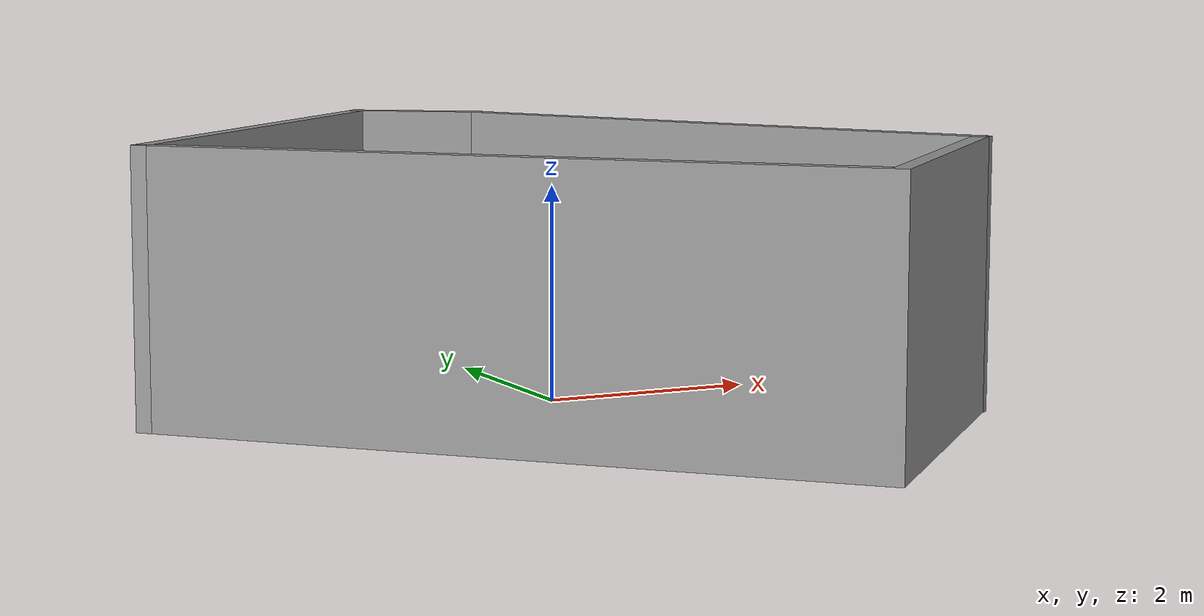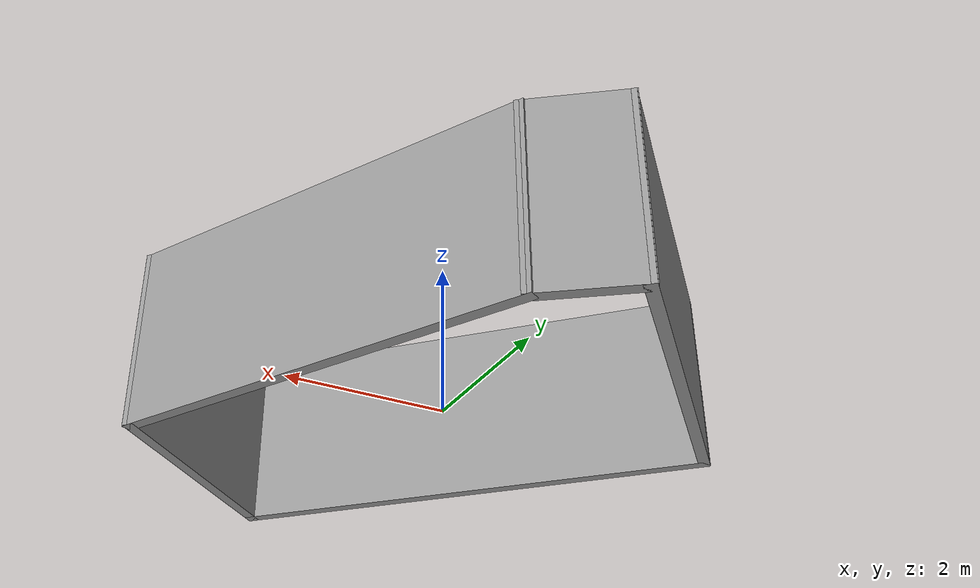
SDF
<?xml version='1.0'?>
<sdf version='1.7'>
  <model name='cty'>
    <pose>-0.297042 -0.55408 0 0 -0 0</pose>
    <link name='Wall_1'>
      <collision name='Wall_1_Collision'>
        <geometry>
          <box>
            <size>5.75 0.15 2.5</size>
          </box>
        </geometry>
        <pose>0 0 1.25 0 -0 0</pose>
      </collision>
      <visual name='Wall_1_Visual'>
        <pose>0 0 1.25 0 -0 0</pose>
        <geometry>
          <box>
            <size>5.75 0.15 2.5</size>
          </box>
        </geometry>
        <material>
          <script>
            <uri>file://media/materials/scripts/gazebo.material</uri>
            <name>Gazebo/Grey</name>
          </script>
          <ambient>1 1 1 1</ambient>
        </material>
        <meta>
          <layer>0</layer>
        </meta>
      </visual>
      <pose>2.11786 0.833881 0 0 -0 -1.0472</pose>
    </link>
    <link name='Wall_2'>
      <collision name='Wall_2_Collision'>
        <geometry>
          <box>
            <size>3.5 0.15 2.5</size>
          </box>
        </geometry>
        <pose>0 0 1.25 0 -0 0</pose>
      </collision>
      <visual name='Wall_2_Visual'>
        <pose>0 0 1.25 0 -0 0</pose>
        <geometry>
          <box>
            <size>3.5 0.15 2.5</size>
          </box>
        </geometry>
        <material>
          <script>
            <uri>file://media/materials/scripts/gazebo.material</uri>
            <name>Gazebo/Grey</name>
          </script>
          <ambient>1 1 1 1</ambient>
        </material>
        <meta>
          <layer>0</layer>
        </meta>
      </visual>
      <pose>2.33345 -2.77539 0 0 -0 -2.35619</pose>
    </link>
    <link name='Wall_3'>
      <collision name='Wall_3_Collision'>
        <geometry>
          <box>
            <size>6.75 0.15 2.5</size>
          </box>
        </geometry>
        <pose>0 0 1.25 0 -0 0</pose>
      </collision>
      <visual name='Wall_3_Visual'>
        <pose>0 0 1.25 0 -0 0</pose>
        <geometry>
          <box>
            <size>6.75 0.15 2.5</size>
          </box>
        </geometry>
        <material>
          <script>
            <uri>file://media/materials/scripts/gazebo.material</uri>
            <name>Gazebo/Grey</name>
          </script>
          <ambient>1 1 1 1</ambient>
        </material>
        <meta>
          <layer>0</layer>
        </meta>
      </visual>
      <pose>-1.1844 -1.62634 0 0 -0 2.35619</pose>
    </link>
    <link name='Wall_4'>
      <collision name='Wall_4_Collision'>
        <geometry>
          <box>
            <size>4.75 0.15 2.5</size>
          </box>
        </geometry>
        <pose>0 0 1.25 0 -0 0</pose>
      </collision>
      <visual name='Wall_4_Visual'>
        <pose>0 0 1.25 0 -0 0</pose>
        <geometry>
          <box>
            <size>4.75 0.15 2.5</size>
          </box>
        </geometry>
        <material>
          <script>
            <uri>file://media/materials/scripts/gazebo.material</uri>
            <name>Gazebo/Grey</name>
          </script>
          <ambient>1 1 1 1</ambient>
        </material>
        <meta>
          <layer>0</layer>
        </meta>
      </visual>
      <pose>-1.89151 2.33345 0 0 -0 0.785398</pose>
    </link>
    <link name='Wall_5'>
      <collision name='Wall_5_Collision'>
        <geometry>
          <box>
            <size>1.35739 0.15 2.5</size>
          </box>
        </geometry>
        <pose>0 0 1.25 0 -0 0</pose>
      </collision>
      <visual name='Wall_5_Visual'>
        <pose>0 0 1.25 0 -0 0</pose>
        <geometry>
          <box>
            <size>1.35739 0.15 2.5</size>
          </box>
        </geometry>
        <material>
          <script>
            <uri>file://media/materials/scripts/gazebo.material</uri>
            <name>Gazebo/Grey</name>
          </script>
          <ambient>1 1 1 1</ambient>
        </material>
        <meta>
          <layer>0</layer>
        </meta>
      </visual>
      <pose>0.226346 3.60927 0 0 -0 -0.6195</pose>
    </link>
    <static>1</static>
  </model>
</sdf>
